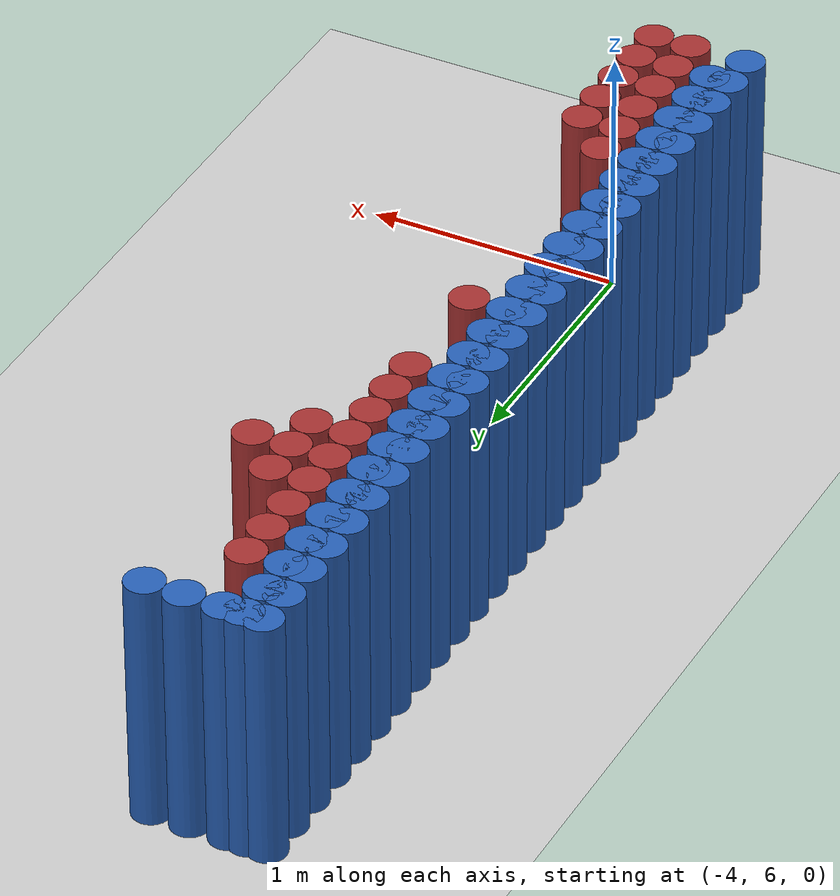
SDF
<sdf version="1.6">
 <world name="barn_world">
  <model name="ground_plane">
   <static>1</static>
   <link name="link">
    <collision name="collision">
     <geometry><plane><normal>0 0 1</normal><size>100 100</size></plane></geometry>
    </collision>
    <visual name="visual">
     <geometry><plane><normal>0 0 1</normal><size>100 100</size></plane></geometry>
     <material>
      <script><uri>file://media/materials/scripts/gazebo.material</uri><name>Gazebo/Grey</name></script>
     </material>
    </visual>
   </link>
  </model>
  <model name="unit_cylinder_131">
   <static>1</static>
   <pose>-4.3500 5.9250 0.5 0 0 0</pose>
   <link name="link">
    <collision name="collision">
     <geometry><cylinder><radius>0.075</radius><length>1</length></cylinder></geometry>
    </collision>
    <visual name="visual">
     <geometry><cylinder><radius>0.075</radius><length>1</length></cylinder></geometry>
     <material><ambient>0.152 0.379 0.72 1</ambient><diffuse>0.152 0.379 0.72 1</diffuse></material>
    </visual>
   </link>
  </model>
  <model name="unit_cylinder_132">
   <static>1</static>
   <pose>-4.3500 6.0750 0.5 0 0 0</pose>
   <link name="link">
    <collision name="collision">
     <geometry><cylinder><radius>0.075</radius><length>1</length></cylinder></geometry>
    </collision>
    <visual name="visual">
     <geometry><cylinder><radius>0.075</radius><length>1</length></cylinder></geometry>
     <material><ambient>0.152 0.379 0.72 1</ambient><diffuse>0.152 0.379 0.72 1</diffuse></material>
    </visual>
   </link>
  </model>
  <model name="unit_cylinder_133">
   <static>1</static>
   <pose>-4.3500 6.2250 0.5 0 0 0</pose>
   <link name="link">
    <collision name="collision">
     <geometry><cylinder><radius>0.075</radius><length>1</length></cylinder></geometry>
    </collision>
    <visual name="visual">
     <geometry><cylinder><radius>0.075</radius><length>1</length></cylinder></geometry>
     <material><ambient>0.152 0.379 0.72 1</ambient><diffuse>0.152 0.379 0.72 1</diffuse></material>
    </visual>
   </link>
  </model>
  <model name="unit_cylinder_134">
   <static>1</static>
   <pose>-4.3500 6.3750 0.5 0 0 0</pose>
   <link name="link">
    <collision name="collision">
     <geometry><cylinder><radius>0.075</radius><length>1</length></cylinder></geometry>
    </collision>
    <visual name="visual">
     <geometry><cylinder><radius>0.075</radius><length>1</length></cylinder></geometry>
     <material><ambient>0.152 0.379 0.72 1</ambient><diffuse>0.152 0.379 0.72 1</diffuse></material>
    </visual>
   </link>
  </model>
  <model name="unit_cylinder_135">
   <static>1</static>
   <pose>-4.3500 6.5250 0.5 0 0 0</pose>
   <link name="link">
    <collision name="collision">
     <geometry><cylinder><radius>0.075</radius><length>1</length></cylinder></geometry>
    </collision>
    <visual name="visual">
     <geometry><cylinder><radius>0.075</radius><length>1</length></cylinder></geometry>
     <material><ambient>0.152 0.379 0.72 1</ambient><diffuse>0.152 0.379 0.72 1</diffuse></material>
    </visual>
   </link>
  </model>
  <model name="unit_cylinder_136">
   <static>1</static>
   <pose>-4.3500 6.6750 0.5 0 0 0</pose>
   <link name="link">
    <collision name="collision">
     <geometry><cylinder><radius>0.075</radius><length>1</length></cylinder></geometry>
    </collision>
    <visual name="visual">
     <geometry><cylinder><radius>0.075</radius><length>1</length></cylinder></geometry>
     <material><ambient>0.152 0.379 0.72 1</ambient><diffuse>0.152 0.379 0.72 1</diffuse></material>
    </visual>
   </link>
  </model>
  <model name="unit_cylinder_137">
   <static>1</static>
   <pose>-4.3500 6.8250 0.5 0 0 0</pose>
   <link name="link">
    <collision name="collision">
     <geometry><cylinder><radius>0.075</radius><length>1</length></cylinder></geometry>
    </collision>
    <visual name="visual">
     <geometry><cylinder><radius>0.075</radius><length>1</length></cylinder></geometry>
     <material><ambient>0.152 0.379 0.72 1</ambient><diffuse>0.152 0.379 0.72 1</diffuse></material>
    </visual>
   </link>
  </model>
  <model name="unit_cylinder_138">
   <static>1</static>
   <pose>-4.3500 6.9750 0.5 0 0 0</pose>
   <link name="link">
    <collision name="collision">
     <geometry><cylinder><radius>0.075</radius><length>1</length></cylinder></geometry>
    </collision>
    <visual name="visual">
     <geometry><cylinder><radius>0.075</radius><length>1</length></cylinder></geometry>
     <material><ambient>0.152 0.379 0.72 1</ambient><diffuse>0.152 0.379 0.72 1</diffuse></material>
    </visual>
   </link>
  </model>
  <model name="unit_cylinder_139">
   <static>1</static>
   <pose>-4.3500 7.1250 0.5 0 0 0</pose>
   <link name="link">
    <collision name="collision">
     <geometry><cylinder><radius>0.075</radius><length>1</length></cylinder></geometry>
    </collision>
    <visual name="visual">
     <geometry><cylinder><radius>0.075</radius><length>1</length></cylinder></geometry>
     <material><ambient>0.152 0.379 0.72 1</ambient><diffuse>0.152 0.379 0.72 1</diffuse></material>
    </visual>
   </link>
  </model>
  <model name="unit_cylinder_140">
   <static>1</static>
   <pose>-4.3500 7.2750 0.5 0 0 0</pose>
   <link name="link">
    <collision name="collision">
     <geometry><cylinder><radius>0.075</radius><length>1</length></cylinder></geometry>
    </collision>
    <visual name="visual">
     <geometry><cylinder><radius>0.075</radius><length>1</length></cylinder></geometry>
     <material><ambient>0.152 0.379 0.72 1</ambient><diffuse>0.152 0.379 0.72 1</diffuse></material>
    </visual>
   </link>
  </model>
  <model name="unit_cylinder_141">
   <static>1</static>
   <pose>-4.3500 7.4250 0.5 0 0 0</pose>
   <link name="link">
    <collision name="collision">
     <geometry><cylinder><radius>0.075</radius><length>1</length></cylinder></geometry>
    </collision>
    <visual name="visual">
     <geometry><cylinder><radius>0.075</radius><length>1</length></cylinder></geometry>
     <material><ambient>0.152 0.379 0.72 1</ambient><diffuse>0.152 0.379 0.72 1</diffuse></material>
    </visual>
   </link>
  </model>
  <model name="unit_cylinder_142">
   <static>1</static>
   <pose>-4.3500 7.5750 0.5 0 0 0</pose>
   <link name="link">
    <collision name="collision">
     <geometry><cylinder><radius>0.075</radius><length>1</length></cylinder></geometry>
    </collision>
    <visual name="visual">
     <geometry><cylinder><radius>0.075</radius><length>1</length></cylinder></geometry>
     <material><ambient>0.152 0.379 0.72 1</ambient><diffuse>0.152 0.379 0.72 1</diffuse></material>
    </visual>
   </link>
  </model>
  <model name="unit_cylinder_143">
   <static>1</static>
   <pose>-4.3500 7.7250 0.5 0 0 0</pose>
   <link name="link">
    <collision name="collision">
     <geometry><cylinder><radius>0.075</radius><length>1</length></cylinder></geometry>
    </collision>
    <visual name="visual">
     <geometry><cylinder><radius>0.075</radius><length>1</length></cylinder></geometry>
     <material><ambient>0.152 0.379 0.72 1</ambient><diffuse>0.152 0.379 0.72 1</diffuse></material>
    </visual>
   </link>
  </model>
  <model name="unit_cylinder_144">
   <static>1</static>
   <pose>-4.3500 7.8750 0.5 0 0 0</pose>
   <link name="link">
    <collision name="collision">
     <geometry><cylinder><radius>0.075</radius><length>1</length></cylinder></geometry>
    </collision>
    <visual name="visual">
     <geometry><cylinder><radius>0.075</radius><length>1</length></cylinder></geometry>
     <material><ambient>0.152 0.379 0.72 1</ambient><diffuse>0.152 0.379 0.72 1</diffuse></material>
    </visual>
   </link>
  </model>
  <model name="unit_cylinder_145">
   <static>1</static>
   <pose>-4.3500 8.0250 0.5 0 0 0</pose>
   <link name="link">
    <collision name="collision">
     <geometry><cylinder><radius>0.075</radius><length>1</length></cylinder></geometry>
    </collision>
    <visual name="visual">
     <geometry><cylinder><radius>0.075</radius><length>1</length></cylinder></geometry>
     <material><ambient>0.152 0.379 0.72 1</ambient><diffuse>0.152 0.379 0.72 1</diffuse></material>
    </visual>
   </link>
  </model>
  <model name="unit_cylinder_146">
   <static>1</static>
   <pose>-4.3500 8.1750 0.5 0 0 0</pose>
   <link name="link">
    <collision name="collision">
     <geometry><cylinder><radius>0.075</radius><length>1</length></cylinder></geometry>
    </collision>
    <visual name="visual">
     <geometry><cylinder><radius>0.075</radius><length>1</length></cylinder></geometry>
     <material><ambient>0.152 0.379 0.72 1</ambient><diffuse>0.152 0.379 0.72 1</diffuse></material>
    </visual>
   </link>
  </model>
  <model name="unit_cylinder_147">
   <static>1</static>
   <pose>-4.3500 8.3250 0.5 0 0 0</pose>
   <link name="link">
    <collision name="collision">
     <geometry><cylinder><radius>0.075</radius><length>1</length></cylinder></geometry>
    </collision>
    <visual name="visual">
     <geometry><cylinder><radius>0.075</radius><length>1</length></cylinder></geometry>
     <material><ambient>0.152 0.379 0.72 1</ambient><diffuse>0.152 0.379 0.72 1</diffuse></material>
    </visual>
   </link>
  </model>
  <model name="unit_cylinder_148">
   <static>1</static>
   <pose>-4.3500 8.4750 0.5 0 0 0</pose>
   <link name="link">
    <collision name="collision">
     <geometry><cylinder><radius>0.075</radius><length>1</length></cylinder></geometry>
    </collision>
    <visual name="visual">
     <geometry><cylinder><radius>0.075</radius><length>1</length></cylinder></geometry>
     <material><ambient>0.152 0.379 0.72 1</ambient><diffuse>0.152 0.379 0.72 1</diffuse></material>
    </visual>
   </link>
  </model>
  <model name="unit_cylinder_149">
   <static>1</static>
   <pose>-4.3500 8.6250 0.5 0 0 0</pose>
   <link name="link">
    <collision name="collision">
     <geometry><cylinder><radius>0.075</radius><length>1</length></cylinder></geometry>
    </collision>
    <visual name="visual">
     <geometry><cylinder><radius>0.075</radius><length>1</length></cylinder></geometry>
     <material><ambient>0.152 0.379 0.72 1</ambient><diffuse>0.152 0.379 0.72 1</diffuse></material>
    </visual>
   </link>
  </model>
  <model name="unit_cylinder_150">
   <static>1</static>
   <pose>-4.3500 8.7750 0.5 0 0 0</pose>
   <link name="link">
    <collision name="collision">
     <geometry><cylinder><radius>0.075</radius><length>1</length></cylinder></geometry>
    </collision>
    <visual name="visual">
     <geometry><cylinder><radius>0.075</radius><length>1</length></cylinder></geometry>
     <material><ambient>0.152 0.379 0.72 1</ambient><diffuse>0.152 0.379 0.72 1</diffuse></material>
    </visual>
   </link>
  </model>
  <model name="unit_cylinder_151">
   <static>1</static>
   <pose>-4.3500 8.9250 0.5 0 0 0</pose>
   <link name="link">
    <collision name="collision">
     <geometry><cylinder><radius>0.075</radius><length>1</length></cylinder></geometry>
    </collision>
    <visual name="visual">
     <geometry><cylinder><radius>0.075</radius><length>1</length></cylinder></geometry>
     <material><ambient>0.152 0.379 0.72 1</ambient><diffuse>0.152 0.379 0.72 1</diffuse></material>
    </visual>
   </link>
  </model>
  <model name="unit_cylinder_152">
   <static>1</static>
   <pose>-4.3500 9.0750 0.5 0 0 0</pose>
   <link name="link">
    <collision name="collision">
     <geometry><cylinder><radius>0.075</radius><length>1</length></cylinder></geometry>
    </collision>
    <visual name="visual">
     <geometry><cylinder><radius>0.075</radius><length>1</length></cylinder></geometry>
     <material><ambient>0.152 0.379 0.72 1</ambient><diffuse>0.152 0.379 0.72 1</diffuse></material>
    </visual>
   </link>
  </model>
  <model name="unit_cylinder_153">
   <static>1</static>
   <pose>-4.3500 9.2250 0.5 0 0 0</pose>
   <link name="link">
    <collision name="collision">
     <geometry><cylinder><radius>0.075</radius><length>1</length></cylinder></geometry>
    </collision>
    <visual name="visual">
     <geometry><cylinder><radius>0.075</radius><length>1</length></cylinder></geometry>
     <material><ambient>0.152 0.379 0.72 1</ambient><diffuse>0.152 0.379 0.72 1</diffuse></material>
    </visual>
   </link>
  </model>
  <model name="unit_cylinder_154">
   <static>1</static>
   <pose>-4.3500 9.3750 0.5 0 0 0</pose>
   <link name="link">
    <collision name="collision">
     <geometry><cylinder><radius>0.075</radius><length>1</length></cylinder></geometry>
    </collision>
    <visual name="visual">
     <geometry><cylinder><radius>0.075</radius><length>1</length></cylinder></geometry>
     <material><ambient>0.152 0.379 0.72 1</ambient><diffuse>0.152 0.379 0.72 1</diffuse></material>
    </visual>
   </link>
  </model>
  <model name="unit_cylinder_155">
   <static>1</static>
   <pose>-4.3500 9.5250 0.5 0 0 0</pose>
   <link name="link">
    <collision name="collision">
     <geometry><cylinder><radius>0.075</radius><length>1</length></cylinder></geometry>
    </collision>
    <visual name="visual">
     <geometry><cylinder><radius>0.075</radius><length>1</length></cylinder></geometry>
     <material><ambient>0.152 0.379 0.72 1</ambient><diffuse>0.152 0.379 0.72 1</diffuse></material>
    </visual>
   </link>
  </model>
  <model name="unit_cylinder_159">
   <static>1</static>
   <pose>-4.2000 5.7750 0.5 0 0 0</pose>
   <link name="link">
    <collision name="collision">
     <geometry><cylinder><radius>0.075</radius><length>1</length></cylinder></geometry>
    </collision>
    <visual name="visual">
     <geometry><cylinder><radius>0.075</radius><length>1</length></cylinder></geometry>
     <material><ambient>0.648 0.192 0.192 1</ambient><diffuse>0.648 0.192 0.192 1</diffuse></material>
    </visual>
   </link>
  </model>
  <model name="unit_cylinder_160">
   <static>1</static>
   <pose>-4.2000 5.9250 0.5 0 0 0</pose>
   <link name="link">
    <collision name="collision">
     <geometry><cylinder><radius>0.075</radius><length>1</length></cylinder></geometry>
    </collision>
    <visual name="visual">
     <geometry><cylinder><radius>0.075</radius><length>1</length></cylinder></geometry>
     <material><ambient>0.648 0.192 0.192 1</ambient><diffuse>0.648 0.192 0.192 1</diffuse></material>
    </visual>
   </link>
  </model>
  <model name="unit_cylinder_161">
   <static>1</static>
   <pose>-4.2000 6.0750 0.5 0 0 0</pose>
   <link name="link">
    <collision name="collision">
     <geometry><cylinder><radius>0.075</radius><length>1</length></cylinder></geometry>
    </collision>
    <visual name="visual">
     <geometry><cylinder><radius>0.075</radius><length>1</length></cylinder></geometry>
     <material><ambient>0.648 0.192 0.192 1</ambient><diffuse>0.648 0.192 0.192 1</diffuse></material>
    </visual>
   </link>
  </model>
  <model name="unit_cylinder_162">
   <static>1</static>
   <pose>-4.2000 6.2250 0.5 0 0 0</pose>
   <link name="link">
    <collision name="collision">
     <geometry><cylinder><radius>0.075</radius><length>1</length></cylinder></geometry>
    </collision>
    <visual name="visual">
     <geometry><cylinder><radius>0.075</radius><length>1</length></cylinder></geometry>
     <material><ambient>0.648 0.192 0.192 1</ambient><diffuse>0.648 0.192 0.192 1</diffuse></material>
    </visual>
   </link>
  </model>
  <model name="unit_cylinder_163">
   <static>1</static>
   <pose>-4.2000 6.3750 0.5 0 0 0</pose>
   <link name="link">
    <collision name="collision">
     <geometry><cylinder><radius>0.075</radius><length>1</length></cylinder></geometry>
    </collision>
    <visual name="visual">
     <geometry><cylinder><radius>0.075</radius><length>1</length></cylinder></geometry>
     <material><ambient>0.648 0.192 0.192 1</ambient><diffuse>0.648 0.192 0.192 1</diffuse></material>
    </visual>
   </link>
  </model>
  <model name="unit_cylinder_164">
   <static>1</static>
   <pose>-4.2000 6.5250 0.5 0 0 0</pose>
   <link name="link">
    <collision name="collision">
     <geometry><cylinder><radius>0.075</radius><length>1</length></cylinder></geometry>
    </collision>
    <visual name="visual">
     <geometry><cylinder><radius>0.075</radius><length>1</length></cylinder></geometry>
     <material><ambient>0.648 0.192 0.192 1</ambient><diffuse>0.648 0.192 0.192 1</diffuse></material>
    </visual>
   </link>
  </model>
  <model name="unit_cylinder_165">
   <static>1</static>
   <pose>-4.2000 7.5750 0.5 0 0 0</pose>
   <link name="link">
    <collision name="collision">
     <geometry><cylinder><radius>0.075</radius><length>1</length></cylinder></geometry>
    </collision>
    <visual name="visual">
     <geometry><cylinder><radius>0.075</radius><length>1</length></cylinder></geometry>
     <material><ambient>0.648 0.192 0.192 1</ambient><diffuse>0.648 0.192 0.192 1</diffuse></material>
    </visual>
   </link>
  </model>
  <model name="unit_cylinder_166">
   <static>1</static>
   <pose>-4.2000 8.0250 0.5 0 0 0</pose>
   <link name="link">
    <collision name="collision">
     <geometry><cylinder><radius>0.075</radius><length>1</length></cylinder></geometry>
    </collision>
    <visual name="visual">
     <geometry><cylinder><radius>0.075</radius><length>1</length></cylinder></geometry>
     <material><ambient>0.648 0.192 0.192 1</ambient><diffuse>0.648 0.192 0.192 1</diffuse></material>
    </visual>
   </link>
  </model>
  <model name="unit_cylinder_167">
   <static>1</static>
   <pose>-4.2000 8.1750 0.5 0 0 0</pose>
   <link name="link">
    <collision name="collision">
     <geometry><cylinder><radius>0.075</radius><length>1</length></cylinder></geometry>
    </collision>
    <visual name="visual">
     <geometry><cylinder><radius>0.075</radius><length>1</length></cylinder></geometry>
     <material><ambient>0.648 0.192 0.192 1</ambient><diffuse>0.648 0.192 0.192 1</diffuse></material>
    </visual>
   </link>
  </model>
  <model name="unit_cylinder_168">
   <static>1</static>
   <pose>-4.2000 8.3250 0.5 0 0 0</pose>
   <link name="link">
    <collision name="collision">
     <geometry><cylinder><radius>0.075</radius><length>1</length></cylinder></geometry>
    </collision>
    <visual name="visual">
     <geometry><cylinder><radius>0.075</radius><length>1</length></cylinder></geometry>
     <material><ambient>0.648 0.192 0.192 1</ambient><diffuse>0.648 0.192 0.192 1</diffuse></material>
    </visual>
   </link>
  </model>
  <model name="unit_cylinder_169">
   <static>1</static>
   <pose>-4.2000 8.4750 0.5 0 0 0</pose>
   <link name="link">
    <collision name="collision">
     <geometry><cylinder><radius>0.075</radius><length>1</length></cylinder></geometry>
    </collision>
    <visual name="visual">
     <geometry><cylinder><radius>0.075</radius><length>1</length></cylinder></geometry>
     <material><ambient>0.648 0.192 0.192 1</ambient><diffuse>0.648 0.192 0.192 1</diffuse></material>
    </visual>
   </link>
  </model>
  <model name="unit_cylinder_170">
   <static>1</static>
   <pose>-4.2000 8.6250 0.5 0 0 0</pose>
   <link name="link">
    <collision name="collision">
     <geometry><cylinder><radius>0.075</radius><length>1</length></cylinder></geometry>
    </collision>
    <visual name="visual">
     <geometry><cylinder><radius>0.075</radius><length>1</length></cylinder></geometry>
     <material><ambient>0.648 0.192 0.192 1</ambient><diffuse>0.648 0.192 0.192 1</diffuse></material>
    </visual>
   </link>
  </model>
  <model name="unit_cylinder_171">
   <static>1</static>
   <pose>-4.2000 8.7750 0.5 0 0 0</pose>
   <link name="link">
    <collision name="collision">
     <geometry><cylinder><radius>0.075</radius><length>1</length></cylinder></geometry>
    </collision>
    <visual name="visual">
     <geometry><cylinder><radius>0.075</radius><length>1</length></cylinder></geometry>
     <material><ambient>0.648 0.192 0.192 1</ambient><diffuse>0.648 0.192 0.192 1</diffuse></material>
    </visual>
   </link>
  </model>
  <model name="unit_cylinder_172">
   <static>1</static>
   <pose>-4.2000 8.9250 0.5 0 0 0</pose>
   <link name="link">
    <collision name="collision">
     <geometry><cylinder><radius>0.075</radius><length>1</length></cylinder></geometry>
    </collision>
    <visual name="visual">
     <geometry><cylinder><radius>0.075</radius><length>1</length></cylinder></geometry>
     <material><ambient>0.648 0.192 0.192 1</ambient><diffuse>0.648 0.192 0.192 1</diffuse></material>
    </visual>
   </link>
  </model>
  <model name="unit_cylinder_173">
   <static>1</static>
   <pose>-4.2000 9.0750 0.5 0 0 0</pose>
   <link name="link">
    <collision name="collision">
     <geometry><cylinder><radius>0.075</radius><length>1</length></cylinder></geometry>
    </collision>
    <visual name="visual">
     <geometry><cylinder><radius>0.075</radius><length>1</length></cylinder></geometry>
     <material><ambient>0.648 0.192 0.192 1</ambient><diffuse>0.648 0.192 0.192 1</diffuse></material>
    </visual>
   </link>
  </model>
  <model name="unit_cylinder_174">
   <static>1</static>
   <pose>-4.2000 9.2250 0.5 0 0 0</pose>
   <link name="link">
    <collision name="collision">
     <geometry><cylinder><radius>0.075</radius><length>1</length></cylinder></geometry>
    </collision>
    <visual name="visual">
     <geometry><cylinder><radius>0.075</radius><length>1</length></cylinder></geometry>
     <material><ambient>0.648 0.192 0.192 1</ambient><diffuse>0.648 0.192 0.192 1</diffuse></material>
    </visual>
   </link>
  </model>
  <model name="unit_cylinder_177">
   <static>1</static>
   <pose>-4.0500 5.7750 0.5 0 0 0</pose>
   <link name="link">
    <collision name="collision">
     <geometry><cylinder><radius>0.075</radius><length>1</length></cylinder></geometry>
    </collision>
    <visual name="visual">
     <geometry><cylinder><radius>0.075</radius><length>1</length></cylinder></geometry>
     <material><ambient>0.648 0.192 0.192 1</ambient><diffuse>0.648 0.192 0.192 1</diffuse></material>
    </visual>
   </link>
  </model>
  <model name="unit_cylinder_178">
   <static>1</static>
   <pose>-4.0500 5.9250 0.5 0 0 0</pose>
   <link name="link">
    <collision name="collision">
     <geometry><cylinder><radius>0.075</radius><length>1</length></cylinder></geometry>
    </collision>
    <visual name="visual">
     <geometry><cylinder><radius>0.075</radius><length>1</length></cylinder></geometry>
     <material><ambient>0.648 0.192 0.192 1</ambient><diffuse>0.648 0.192 0.192 1</diffuse></material>
    </visual>
   </link>
  </model>
  <model name="unit_cylinder_179">
   <static>1</static>
   <pose>-4.0500 6.0750 0.5 0 0 0</pose>
   <link name="link">
    <collision name="collision">
     <geometry><cylinder><radius>0.075</radius><length>1</length></cylinder></geometry>
    </collision>
    <visual name="visual">
     <geometry><cylinder><radius>0.075</radius><length>1</length></cylinder></geometry>
     <material><ambient>0.648 0.192 0.192 1</ambient><diffuse>0.648 0.192 0.192 1</diffuse></material>
    </visual>
   </link>
  </model>
  <model name="unit_cylinder_180">
   <static>1</static>
   <pose>-4.0500 6.2250 0.5 0 0 0</pose>
   <link name="link">
    <collision name="collision">
     <geometry><cylinder><radius>0.075</radius><length>1</length></cylinder></geometry>
    </collision>
    <visual name="visual">
     <geometry><cylinder><radius>0.075</radius><length>1</length></cylinder></geometry>
     <material><ambient>0.648 0.192 0.192 1</ambient><diffuse>0.648 0.192 0.192 1</diffuse></material>
    </visual>
   </link>
  </model>
  <model name="unit_cylinder_181">
   <static>1</static>
   <pose>-4.0500 6.3750 0.5 0 0 0</pose>
   <link name="link">
    <collision name="collision">
     <geometry><cylinder><radius>0.075</radius><length>1</length></cylinder></geometry>
    </collision>
    <visual name="visual">
     <geometry><cylinder><radius>0.075</radius><length>1</length></cylinder></geometry>
     <material><ambient>0.648 0.192 0.192 1</ambient><diffuse>0.648 0.192 0.192 1</diffuse></material>
    </visual>
   </link>
  </model>
  <model name="unit_cylinder_182">
   <static>1</static>
   <pose>-4.0500 8.4750 0.5 0 0 0</pose>
   <link name="link">
    <collision name="collision">
     <geometry><cylinder><radius>0.075</radius><length>1</length></cylinder></geometry>
    </collision>
    <visual name="visual">
     <geometry><cylinder><radius>0.075</radius><length>1</length></cylinder></geometry>
     <material><ambient>0.648 0.192 0.192 1</ambient><diffuse>0.648 0.192 0.192 1</diffuse></material>
    </visual>
   </link>
  </model>
  <model name="unit_cylinder_183">
   <static>1</static>
   <pose>-4.0500 8.6250 0.5 0 0 0</pose>
   <link name="link">
    <collision name="collision">
     <geometry><cylinder><radius>0.075</radius><length>1</length></cylinder></geometry>
    </collision>
    <visual name="visual">
     <geometry><cylinder><radius>0.075</radius><length>1</length></cylinder></geometry>
     <material><ambient>0.648 0.192 0.192 1</ambient><diffuse>0.648 0.192 0.192 1</diffuse></material>
    </visual>
   </link>
  </model>
  <model name="unit_cylinder_184">
   <static>1</static>
   <pose>-4.0500 8.7750 0.5 0 0 0</pose>
   <link name="link">
    <collision name="collision">
     <geometry><cylinder><radius>0.075</radius><length>1</length></cylinder></geometry>
    </collision>
    <visual name="visual">
     <geometry><cylinder><radius>0.075</radius><length>1</length></cylinder></geometry>
     <material><ambient>0.648 0.192 0.192 1</ambient><diffuse>0.648 0.192 0.192 1</diffuse></material>
    </visual>
   </link>
  </model>
  <model name="unit_cylinder_187">
   <static>1</static>
   <pose>-3.9000 8.6250 0.5 0 0 0</pose>
   <link name="link">
    <collision name="collision">
     <geometry><cylinder><radius>0.075</radius><length>1</length></cylinder></geometry>
    </collision>
    <visual name="visual">
     <geometry><cylinder><radius>0.075</radius><length>1</length></cylinder></geometry>
     <material><ambient>0.648 0.192 0.192 1</ambient><diffuse>0.648 0.192 0.192 1</diffuse></material>
    </visual>
   </link>
  </model>
  <model name="unit_cylinder_335">
   <static>1</static>
   <pose>-3.9750 9.5250 0.5 0 0 0</pose>
   <link name="link">
    <collision name="collision">
     <geometry><cylinder><radius>0.075</radius><length>1</length></cylinder></geometry>
    </collision>
    <visual name="visual">
     <geometry><cylinder><radius>0.075</radius><length>1</length></cylinder></geometry>
     <material><ambient>0.152 0.379 0.72 1</ambient><diffuse>0.152 0.379 0.72 1</diffuse></material>
    </visual>
   </link>
  </model>
  <model name="unit_cylinder_336">
   <static>1</static>
   <pose>-4.1250 9.5250 0.5 0 0 0</pose>
   <link name="link">
    <collision name="collision">
     <geometry><cylinder><radius>0.075</radius><length>1</length></cylinder></geometry>
    </collision>
    <visual name="visual">
     <geometry><cylinder><radius>0.075</radius><length>1</length></cylinder></geometry>
     <material><ambient>0.152 0.379 0.72 1</ambient><diffuse>0.152 0.379 0.72 1</diffuse></material>
    </visual>
   </link>
  </model>
  <model name="unit_cylinder_337">
   <static>1</static>
   <pose>-4.2750 9.5250 0.5 0 0 0</pose>
   <link name="link">
    <collision name="collision">
     <geometry><cylinder><radius>0.075</radius><length>1</length></cylinder></geometry>
    </collision>
    <visual name="visual">
     <geometry><cylinder><radius>0.075</radius><length>1</length></cylinder></geometry>
     <material><ambient>0.152 0.379 0.72 1</ambient><diffuse>0.152 0.379 0.72 1</diffuse></material>
    </visual>
   </link>
  </model>
  <model name="unit_cylinder_338">
   <static>1</static>
   <pose>-4.4250 9.5250 0.5 0 0 0</pose>
   <link name="link">
    <collision name="collision">
     <geometry><cylinder><radius>0.075</radius><length>1</length></cylinder></geometry>
    </collision>
    <visual name="visual">
     <geometry><cylinder><radius>0.075</radius><length>1</length></cylinder></geometry>
     <material><ambient>0.152 0.379 0.72 1</ambient><diffuse>0.152 0.379 0.72 1</diffuse></material>
    </visual>
   </link>
  </model>
  <model name="unit_cylinder_348">
   <static>1</static>
   <pose>-4.4250 5.7750 0.5 0 0 0</pose>
   <link name="link">
    <collision name="collision">
     <geometry><cylinder><radius>0.075</radius><length>1</length></cylinder></geometry>
    </collision>
    <visual name="visual">
     <geometry><cylinder><radius>0.075</radius><length>1</length></cylinder></geometry>
     <material><ambient>0.152 0.379 0.72 1</ambient><diffuse>0.152 0.379 0.72 1</diffuse></material>
    </visual>
   </link>
  </model>
  <model name="unit_cylinder_350">
   <static>1</static>
   <pose>-4.4250 5.9250 0.5 0 0 0</pose>
   <link name="link">
    <collision name="collision">
     <geometry><cylinder><radius>0.075</radius><length>1</length></cylinder></geometry>
    </collision>
    <visual name="visual">
     <geometry><cylinder><radius>0.075</radius><length>1</length></cylinder></geometry>
     <material><ambient>0.152 0.379 0.72 1</ambient><diffuse>0.152 0.379 0.72 1</diffuse></material>
    </visual>
   </link>
  </model>
  <model name="unit_cylinder_352">
   <static>1</static>
   <pose>-4.4250 6.0750 0.5 0 0 0</pose>
   <link name="link">
    <collision name="collision">
     <geometry><cylinder><radius>0.075</radius><length>1</length></cylinder></geometry>
    </collision>
    <visual name="visual">
     <geometry><cylinder><radius>0.075</radius><length>1</length></cylinder></geometry>
     <material><ambient>0.152 0.379 0.72 1</ambient><diffuse>0.152 0.379 0.72 1</diffuse></material>
    </visual>
   </link>
  </model>
  <model name="unit_cylinder_354">
   <static>1</static>
   <pose>-4.4250 6.2250 0.5 0 0 0</pose>
   <link name="link">
    <collision name="collision">
     <geometry><cylinder><radius>0.075</radius><length>1</length></cylinder></geometry>
    </collision>
    <visual name="visual">
     <geometry><cylinder><radius>0.075</radius><length>1</length></cylinder></geometry>
     <material><ambient>0.152 0.379 0.72 1</ambient><diffuse>0.152 0.379 0.72 1</diffuse></material>
    </visual>
   </link>
  </model>
  <model name="unit_cylinder_356">
   <static>1</static>
   <pose>-4.4250 6.3750 0.5 0 0 0</pose>
   <link name="link">
    <collision name="collision">
     <geometry><cylinder><radius>0.075</radius><length>1</length></cylinder></geometry>
    </collision>
    <visual name="visual">
     <geometry><cylinder><radius>0.075</radius><length>1</length></cylinder></geometry>
     <material><ambient>0.152 0.379 0.72 1</ambient><diffuse>0.152 0.379 0.72 1</diffuse></material>
    </visual>
   </link>
  </model>
  <model name="unit_cylinder_358">
   <static>1</static>
   <pose>-4.4250 6.5250 0.5 0 0 0</pose>
   <link name="link">
    <collision name="collision">
     <geometry><cylinder><radius>0.075</radius><length>1</length></cylinder></geometry>
    </collision>
    <visual name="visual">
     <geometry><cylinder><radius>0.075</radius><length>1</length></cylinder></geometry>
     <material><ambient>0.152 0.379 0.72 1</ambient><diffuse>0.152 0.379 0.72 1</diffuse></material>
    </visual>
   </link>
  </model>
  <model name="unit_cylinder_360">
   <static>1</static>
   <pose>-4.4250 6.6750 0.5 0 0 0</pose>
   <link name="link">
    <collision name="collision">
     <geometry><cylinder><radius>0.075</radius><length>1</length></cylinder></geometry>
    </collision>
    <visual name="visual">
     <geometry><cylinder><radius>0.075</radius><length>1</length></cylinder></geometry>
     <material><ambient>0.152 0.379 0.72 1</ambient><diffuse>0.152 0.379 0.72 1</diffuse></material>
    </visual>
   </link>
  </model>
  <model name="unit_cylinder_362">
   <static>1</static>
   <pose>-4.4250 6.8250 0.5 0 0 0</pose>
   <link name="link">
    <collision name="collision">
     <geometry><cylinder><radius>0.075</radius><length>1</length></cylinder></geometry>
    </collision>
    <visual name="visual">
     <geometry><cylinder><radius>0.075</radius><length>1</length></cylinder></geometry>
     <material><ambient>0.152 0.379 0.72 1</ambient><diffuse>0.152 0.379 0.72 1</diffuse></material>
    </visual>
   </link>
  </model>
  <model name="unit_cylinder_364">
   <static>1</static>
   <pose>-4.4250 6.9750 0.5 0 0 0</pose>
   <link name="link">
    <collision name="collision">
     <geometry><cylinder><radius>0.075</radius><length>1</length></cylinder></geometry>
    </collision>
    <visual name="visual">
     <geometry><cylinder><radius>0.075</radius><length>1</length></cylinder></geometry>
     <material><ambient>0.152 0.379 0.72 1</ambient><diffuse>0.152 0.379 0.72 1</diffuse></material>
    </visual>
   </link>
  </model>
  <model name="unit_cylinder_366">
   <static>1</static>
   <pose>-4.4250 7.1250 0.5 0 0 0</pose>
   <link name="link">
    <collision name="collision">
     <geometry><cylinder><radius>0.075</radius><length>1</length></cylinder></geometry>
    </collision>
    <visual name="visual">
     <geometry><cylinder><radius>0.075</radius><length>1</length></cylinder></geometry>
     <material><ambient>0.152 0.379 0.72 1</ambient><diffuse>0.152 0.379 0.72 1</diffuse></material>
    </visual>
   </link>
  </model>
  <model name="unit_cylinder_368">
   <static>1</static>
   <pose>-4.4250 7.2750 0.5 0 0 0</pose>
   <link name="link">
    <collision name="collision">
     <geometry><cylinder><radius>0.075</radius><length>1</length></cylinder></geometry>
    </collision>
    <visual name="visual">
     <geometry><cylinder><radius>0.075</radius><length>1</length></cylinder></geometry>
     <material><ambient>0.152 0.379 0.72 1</ambient><diffuse>0.152 0.379 0.72 1</diffuse></material>
    </visual>
   </link>
  </model>
  <model name="unit_cylinder_370">
   <static>1</static>
   <pose>-4.4250 7.4250 0.5 0 0 0</pose>
   <link name="link">
    <collision name="collision">
     <geometry><cylinder><radius>0.075</radius><length>1</length></cylinder></geometry>
    </collision>
    <visual name="visual">
     <geometry><cylinder><radius>0.075</radius><length>1</length></cylinder></geometry>
     <material><ambient>0.152 0.379 0.72 1</ambient><diffuse>0.152 0.379 0.72 1</diffuse></material>
    </visual>
   </link>
  </model>
  <model name="unit_cylinder_372">
   <static>1</static>
   <pose>-4.4250 7.5750 0.5 0 0 0</pose>
   <link name="link">
    <collision name="collision">
     <geometry><cylinder><radius>0.075</radius><length>1</length></cylinder></geometry>
    </collision>
    <visual name="visual">
     <geometry><cylinder><radius>0.075</radius><length>1</length></cylinder></geometry>
     <material><ambient>0.152 0.379 0.72 1</ambient><diffuse>0.152 0.379 0.72 1</diffuse></material>
    </visual>
   </link>
  </model>
  <model name="unit_cylinder_374">
   <static>1</static>
   <pose>-4.4250 7.7250 0.5 0 0 0</pose>
   <link name="link">
    <collision name="collision">
     <geometry><cylinder><radius>0.075</radius><length>1</length></cylinder></geometry>
    </collision>
    <visual name="visual">
     <geometry><cylinder><radius>0.075</radius><length>1</length></cylinder></geometry>
     <material><ambient>0.152 0.379 0.72 1</ambient><diffuse>0.152 0.379 0.72 1</diffuse></material>
    </visual>
   </link>
  </model>
  <model name="unit_cylinder_376">
   <static>1</static>
   <pose>-4.4250 7.8750 0.5 0 0 0</pose>
   <link name="link">
    <collision name="collision">
     <geometry><cylinder><radius>0.075</radius><length>1</length></cylinder></geometry>
    </collision>
    <visual name="visual">
     <geometry><cylinder><radius>0.075</radius><length>1</length></cylinder></geometry>
     <material><ambient>0.152 0.379 0.72 1</ambient><diffuse>0.152 0.379 0.72 1</diffuse></material>
    </visual>
   </link>
  </model>
  <model name="unit_cylinder_378">
   <static>1</static>
   <pose>-4.4250 8.0250 0.5 0 0 0</pose>
   <link name="link">
    <collision name="collision">
     <geometry><cylinder><radius>0.075</radius><length>1</length></cylinder></geometry>
    </collision>
    <visual name="visual">
     <geometry><cylinder><radius>0.075</radius><length>1</length></cylinder></geometry>
     <material><ambient>0.152 0.379 0.72 1</ambient><diffuse>0.152 0.379 0.72 1</diffuse></material>
    </visual>
   </link>
  </model>
  <model name="unit_cylinder_380">
   <static>1</static>
   <pose>-4.4250 8.1750 0.5 0 0 0</pose>
   <link name="link">
    <collision name="collision">
     <geometry><cylinder><radius>0.075</radius><length>1</length></cylinder></geometry>
    </collision>
    <visual name="visual">
     <geometry><cylinder><radius>0.075</radius><length>1</length></cylinder></geometry>
     <material><ambient>0.152 0.379 0.72 1</ambient><diffuse>0.152 0.379 0.72 1</diffuse></material>
    </visual>
   </link>
  </model>
  <model name="unit_cylinder_382">
   <static>1</static>
   <pose>-4.4250 8.3250 0.5 0 0 0</pose>
   <link name="link">
    <collision name="collision">
     <geometry><cylinder><radius>0.075</radius><length>1</length></cylinder></geometry>
    </collision>
    <visual name="visual">
     <geometry><cylinder><radius>0.075</radius><length>1</length></cylinder></geometry>
     <material><ambient>0.152 0.379 0.72 1</ambient><diffuse>0.152 0.379 0.72 1</diffuse></material>
    </visual>
   </link>
  </model>
  <model name="unit_cylinder_384">
   <static>1</static>
   <pose>-4.4250 8.4750 0.5 0 0 0</pose>
   <link name="link">
    <collision name="collision">
     <geometry><cylinder><radius>0.075</radius><length>1</length></cylinder></geometry>
    </collision>
    <visual name="visual">
     <geometry><cylinder><radius>0.075</radius><length>1</length></cylinder></geometry>
     <material><ambient>0.152 0.379 0.72 1</ambient><diffuse>0.152 0.379 0.72 1</diffuse></material>
    </visual>
   </link>
  </model>
  <model name="unit_cylinder_386">
   <static>1</static>
   <pose>-4.4250 8.6250 0.5 0 0 0</pose>
   <link name="link">
    <collision name="collision">
     <geometry><cylinder><radius>0.075</radius><length>1</length></cylinder></geometry>
    </collision>
    <visual name="visual">
     <geometry><cylinder><radius>0.075</radius><length>1</length></cylinder></geometry>
     <material><ambient>0.152 0.379 0.72 1</ambient><diffuse>0.152 0.379 0.72 1</diffuse></material>
    </visual>
   </link>
  </model>
  <model name="unit_cylinder_388">
   <static>1</static>
   <pose>-4.4250 8.7750 0.5 0 0 0</pose>
   <link name="link">
    <collision name="collision">
     <geometry><cylinder><radius>0.075</radius><length>1</length></cylinder></geometry>
    </collision>
    <visual name="visual">
     <geometry><cylinder><radius>0.075</radius><length>1</length></cylinder></geometry>
     <material><ambient>0.152 0.379 0.72 1</ambient><diffuse>0.152 0.379 0.72 1</diffuse></material>
    </visual>
   </link>
  </model>
  <model name="unit_cylinder_390">
   <static>1</static>
   <pose>-4.4250 8.9250 0.5 0 0 0</pose>
   <link name="link">
    <collision name="collision">
     <geometry><cylinder><radius>0.075</radius><length>1</length></cylinder></geometry>
    </collision>
    <visual name="visual">
     <geometry><cylinder><radius>0.075</radius><length>1</length></cylinder></geometry>
     <material><ambient>0.152 0.379 0.72 1</ambient><diffuse>0.152 0.379 0.72 1</diffuse></material>
    </visual>
   </link>
  </model>
  <model name="unit_cylinder_392">
   <static>1</static>
   <pose>-4.4250 9.0750 0.5 0 0 0</pose>
   <link name="link">
    <collision name="collision">
     <geometry><cylinder><radius>0.075</radius><length>1</length></cylinder></geometry>
    </collision>
    <visual name="visual">
     <geometry><cylinder><radius>0.075</radius><length>1</length></cylinder></geometry>
     <material><ambient>0.152 0.379 0.72 1</ambient><diffuse>0.152 0.379 0.72 1</diffuse></material>
    </visual>
   </link>
  </model>
  <model name="unit_cylinder_394">
   <static>1</static>
   <pose>-4.4250 9.2250 0.5 0 0 0</pose>
   <link name="link">
    <collision name="collision">
     <geometry><cylinder><radius>0.075</radius><length>1</length></cylinder></geometry>
    </collision>
    <visual name="visual">
     <geometry><cylinder><radius>0.075</radius><length>1</length></cylinder></geometry>
     <material><ambient>0.152 0.379 0.72 1</ambient><diffuse>0.152 0.379 0.72 1</diffuse></material>
    </visual>
   </link>
  </model>
  <model name="unit_cylinder_396">
   <static>1</static>
   <pose>-4.4250 9.3750 0.5 0 0 0</pose>
   <link name="link">
    <collision name="collision">
     <geometry><cylinder><radius>0.075</radius><length>1</length></cylinder></geometry>
    </collision>
    <visual name="visual">
     <geometry><cylinder><radius>0.075</radius><length>1</length></cylinder></geometry>
     <material><ambient>0.152 0.379 0.72 1</ambient><diffuse>0.152 0.379 0.72 1</diffuse></material>
    </visual>
   </link>
  </model>
 </world>
</sdf>
